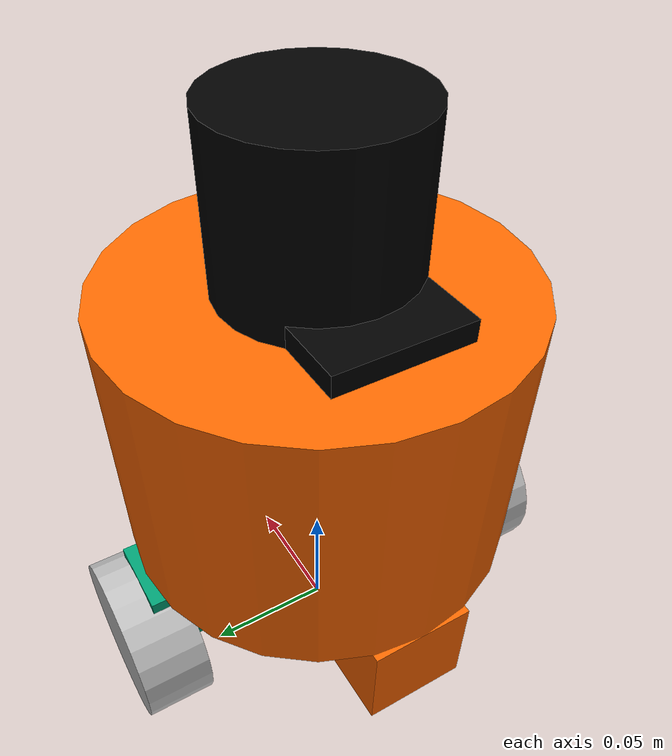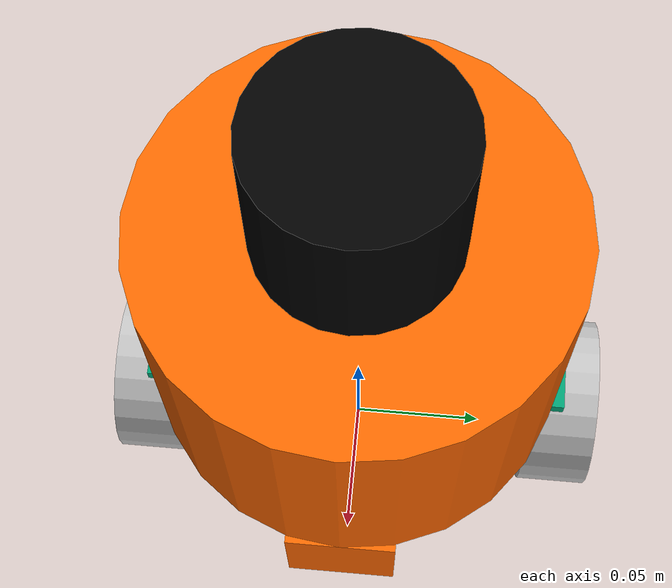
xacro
<?xml version="1.0"?>
<robot name="arm" xmlns:xacro="http://www.ros.org/wiki/xacro">

    <xacro:include filename="$(find mbot_description)/urdf/xacro/mbot_base.xacro" />
    <xacro:include filename="$(find mbot_description)/urdf/xacro/sensors/lidar.xacro" />
    <xacro:include filename="$(find mbot_description)/urdf/xacro/sensors/imu.xacro" />

    <xacro:property name="laser_offset_x" value="0.0" />
    <xacro:property name="laser_offset_y" value="0.0" />
    <xacro:property name="laser_offset_z" value="0.082" />

    <xacro:property name="imu_offset_x" value="-0.035" />
    <xacro:property name="imu_offset_y" value="0.0" />
    <xacro:property name="imu_offset_z" value="0.055" />

    <mbot_base/>

    <!-- laser -->
    <joint name="laser_joint" type="fixed">
        <origin xyz="${laser_offset_x} ${laser_offset_y} ${laser_offset_z}" rpy="0 0 0" />
        <parent link="base_link"/>
        <child link="laser_link"/>
    </joint>

    <xacro:rplidar prefix="laser"/>
    <!-- imu -->
    <joint name="imu_joint" type="fixed">
        <origin xyz="${imu_offset_x} ${imu_offset_y} ${imu_offset_z}" rpy="0 0 0" />
        <parent link="base_link"/>
        <child link="imu_link"/>
    </joint>
    <xacro:lpms prefix="imu"/>

</robot>

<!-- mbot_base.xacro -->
<robot name="mbot" xmlns:xacro="http://www.ros.org/wiki/xacro">

    <!-- PROPERTY LIST -->
    <xacro:property name="M_PI" value="3.1415926"/>

    <xacro:property name="base_radius" value="0.075"/>
    <xacro:property name="base_length" value="0.104"/>

    <xacro:property name="base_motor_x" value="0.030"/>
    <xacro:property name="base_motor_y" value="0.157"/>
    <xacro:property name="base_motor_z" value="0.030"/>

    <xacro:property name="wheel_radius" value="0.032"/>
    <xacro:property name="wheel_length" value="0.026"/>

    <xacro:property name="wheel_joint_x" value="0.0000"/>
    <xacro:property name="wheel_joint_y" value="0.0785"/>
    <xacro:property name="wheel_joint_z" value="0.0850"/>

    <xacro:property name="caster_box_x" value="0.04"/>
    <xacro:property name="caster_box_y" value="0.04"/>
    <xacro:property name="caster_box_z" value="0.04"/>

    <xacro:property name="caster_box_joint_x" value="0.055"/>

    <xacro:property name="caster_radius" value="0.0125"/> <!-- wheel_radius - ( base_length/2 - wheel_joint_z) -->

    <xacro:property name="caster_joint_x" value="0.055"/>

    <!-- Defining the colors used in this robot -->
    <material name="yellow">
        <color rgba="1 0.4 0 1"/>
    </material>
    <material name="black">
        <color rgba="0 0 0 0.95"/>
    </material>
    <material name="gray">
        <color rgba="0.75 0.75 0.75 1"/>
    </material>

    <!-- Macro for robot wheel -->
    <xacro:macro name="wheel" params="prefix reflect">
        <joint name="${prefix}_wheel_joint" type="continuous">
            <origin xyz="${-wheel_joint_x} ${reflect*wheel_joint_y} ${-wheel_joint_z}" rpy="0 0 0"/>
            <parent link="base_link"/>
            <child link="${prefix}_wheel_link"/>
            <axis xyz="0 1 0"/>
        </joint>

        <link name="${prefix}_wheel_link">
            <visual>
                <origin xyz="0 0 0" rpy="${M_PI/2} 0 0" />
                <geometry>
                    <cylinder radius="${wheel_radius}" length = "${wheel_length}"/>
                </geometry>
                <material name="gray" />
            </visual>
        </link>
    </xacro:macro>

    <!-- Macro for robot caster box -->
    <xacro:macro name="caster_box" params="prefix reflect">
        <joint name="${prefix}_caster_box_joint" type="fixed">
            <origin xyz="${reflect*caster_box_joint_x} 0 ${-(base_length/2 + caster_box_z/2)}" rpy="0 0 0"/>
            <parent link="base_link"/>
            <child link="${prefix}_caster_box_link"/>
        </joint>

        <link name="${prefix}_caster_box_link">
            <visual>
                <origin xyz="0 0 0" rpy="0 0 0"/>
                <geometry>
                     <box size="${caster_box_x} ${caster_box_y} ${caster_box_z}" />
                </geometry>
                <material name="yellow" />
            </visual>
        </link>
    </xacro:macro>

    <!-- Macro for robot caster -->
    <xacro:macro name="caster" params="prefix reflect">
        <joint name="${prefix}_caster_joint" type="continuous">
            <origin xyz="${reflect*caster_joint_x} 0 ${-(base_length/2 + caster_box_z + caster_radius)}" rpy="0 0 0"/>
            <parent link="base_link"/>
            <child link="${prefix}_caster_link"/>
            <axis xyz="0 1 0"/>
        </joint>

        <link name="${prefix}_caster_link">
            <visual>
                <origin xyz="0 0 0" rpy="0 0 0"/>
                <geometry>
                    <sphere radius="${caster_radius}" />
                </geometry>
                <material name="black" />
            </visual>
        </link>
    </xacro:macro>

    <xacro:macro name="mbot_base">

        <link name="base_footprint">
            <visual>
                <origin xyz="0 0 0" rpy="0 0 0" />
                <geometry>
                    <box size="0.001 0.001 0.001" />
                </geometry>
            </visual>
        </link>

        <joint name="base_footprint_joint" type="fixed">
            <origin xyz="0 0 ${base_length/2 + caster_box_z + caster_radius*2}" rpy="0 0 0" />
            <parent link="base_footprint"/>
            <child link="base_link" />
        </joint>

        <link name="base_link">
            <visual>
                <origin xyz=" 0 0 0" rpy="0 0 0" />
                <geometry>
                    <cylinder radius="${base_radius}" length = "${base_length}"/>
                </geometry>
                <material name="yellow" />
            </visual>
        </link>

        <joint name="base_motor_joint" type="fixed">
            <origin xyz="0 0 -${base_length/2 + base_motor_z/2 }" rpy="0 0 0" />
            <parent link="base_link"/>
            <child link="base_motor_link" />
        </joint>

        <link name="base_motor_link">
            <visual>
            <origin xyz="0 0 0" rpy="0 0 0" />
            <geometry>
                <box size="${base_motor_x} ${base_motor_y} ${base_motor_z}" />
            </geometry>
            </visual>
        </link>

        <wheel prefix="left" reflect="-1"/>
        <wheel prefix="right" reflect="1"/>
        <caster_box prefix="front" reflect="1"/>
        <caster_box prefix="back" reflect="-1"/>
        <caster prefix="front" reflect="1"/>
        <caster prefix="back" reflect="-1"/>

    </xacro:macro>
</robot>

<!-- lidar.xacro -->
<robot xmlns:xacro="http://www.ros.org/wiki/xacro" name="laser">

	<xacro:macro name="rplidar" params="prefix:=laser">
		<link name="${prefix}_link">
			<visual>
				<origin xyz=" 0 0 0 " rpy="0 0 0" />
				<geometry>
					<cylinder length="0.06" radius="0.035"/>
				</geometry>
				<material name="black"/>
			</visual>
		</link>
	</xacro:macro>

</robot>

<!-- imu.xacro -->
<robot xmlns:xacro="http://www.ros.org/wiki/xacro" name="imu">

	<xacro:macro name="lpms" params="prefix:=imu">
		<link name="${prefix}_link">
			<visual>
				<origin xyz=" 0 0 0 " rpy="0 0 0" />
				<geometry>
					<box size="0.03 0.05 0.01"/>
				</geometry>
				<material name="black"/>
			</visual>
		</link>
	</xacro:macro>

</robot>
